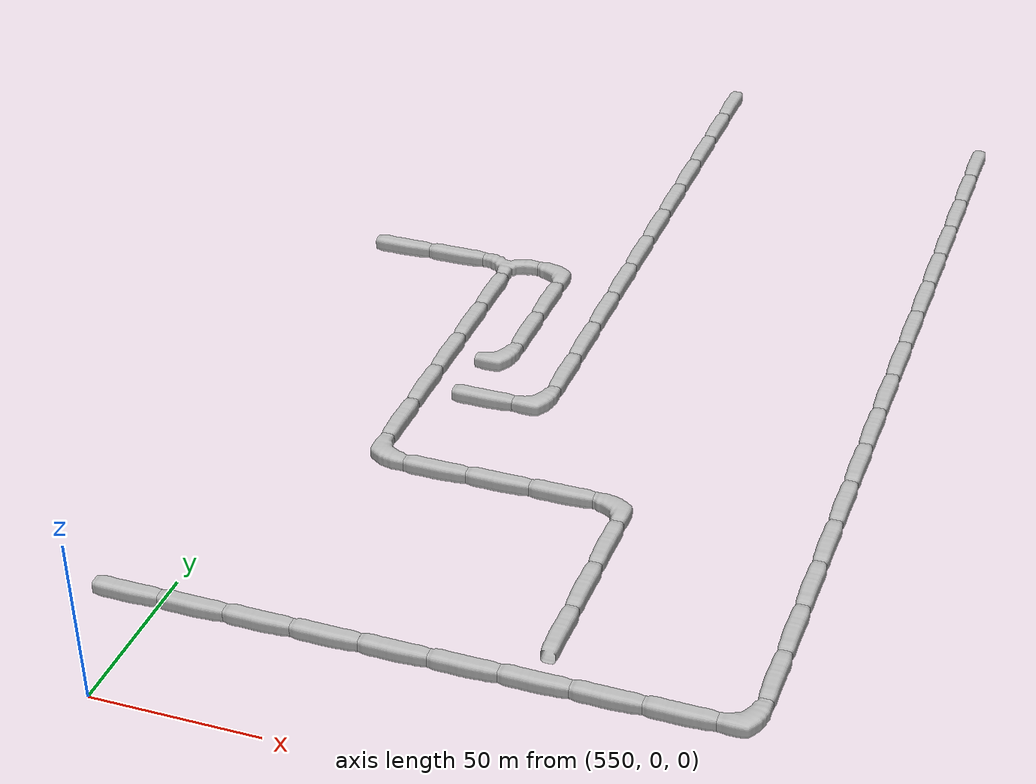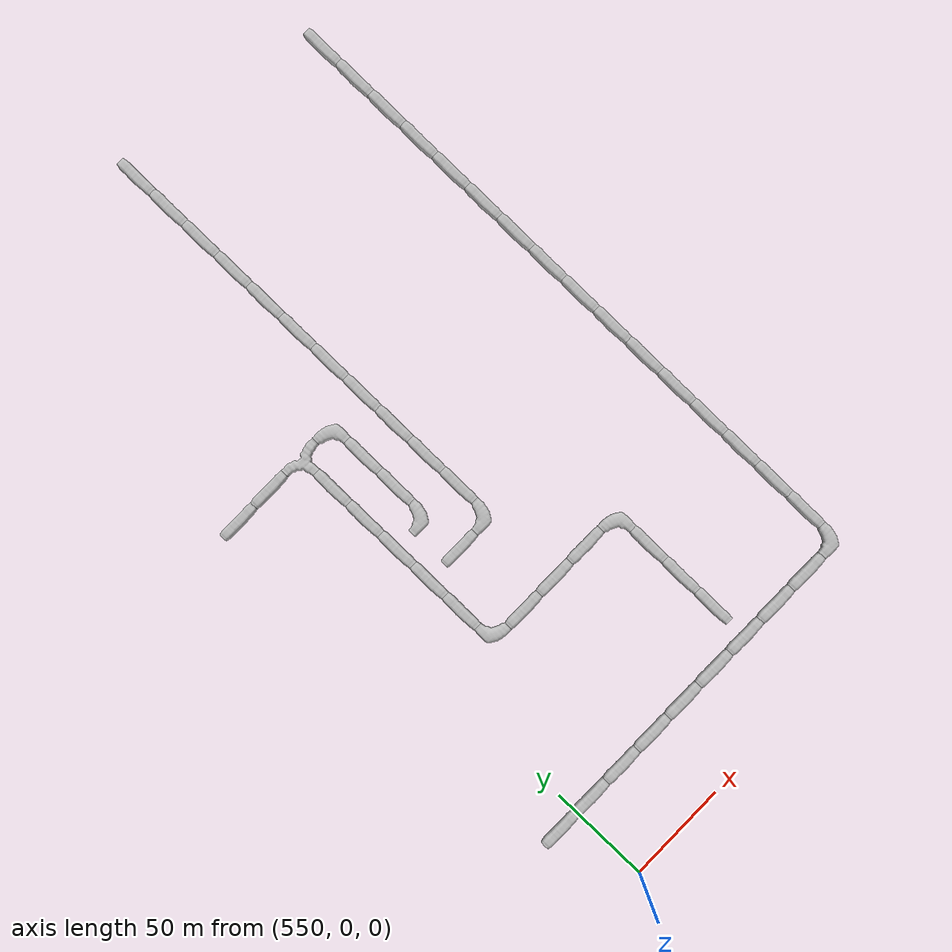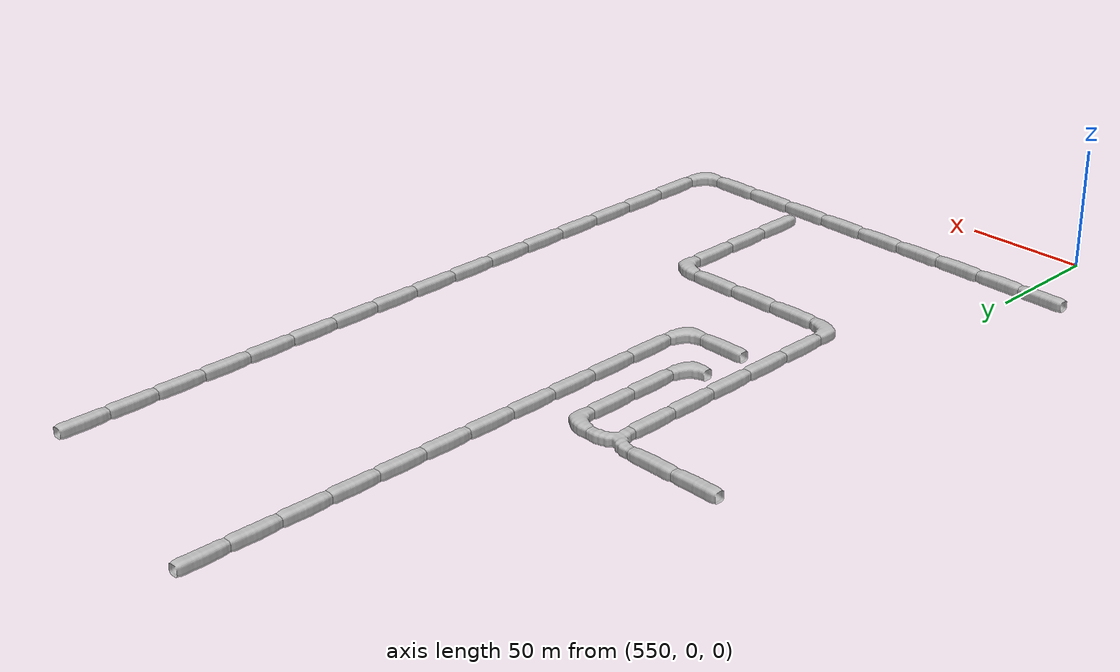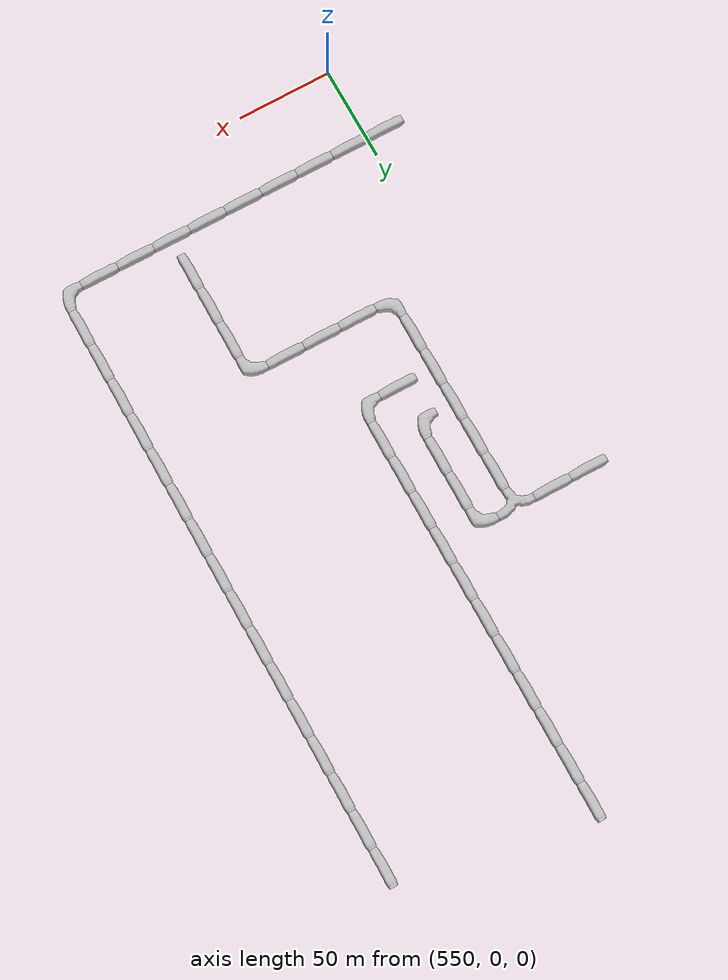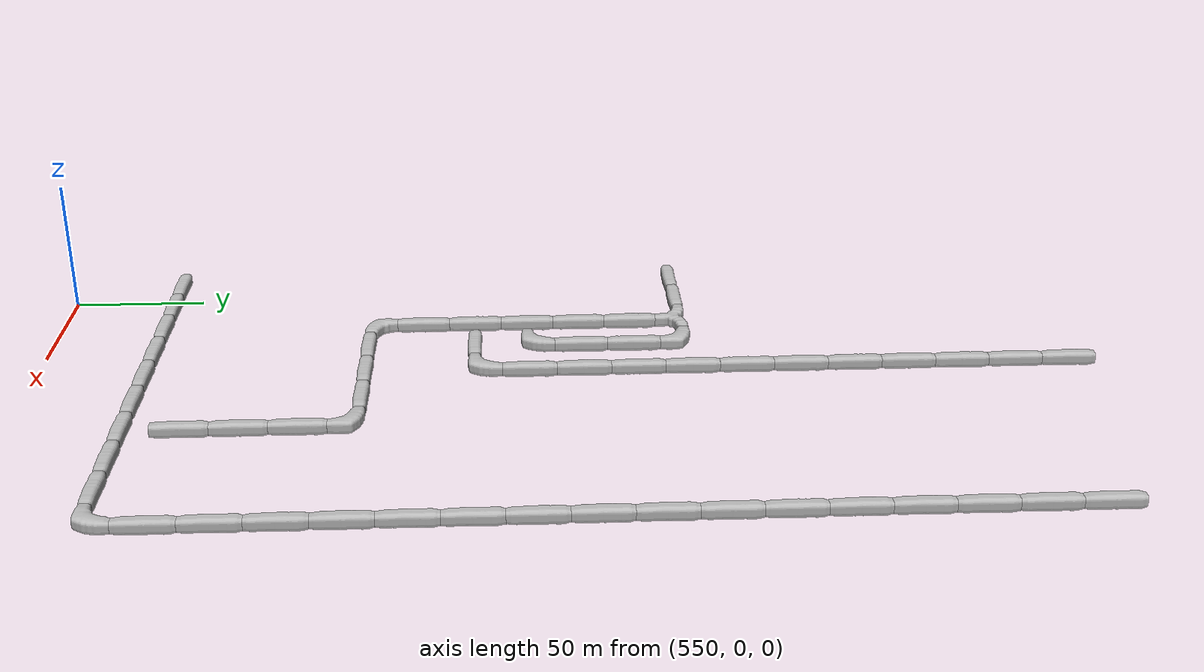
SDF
<sdf version="1.6">
 <world name="cave_32000_8">
  <include>
   <static>true</static>
   <name>cave_27_2</name>
   <pose>540 40 0 0 0 1.5707963267948966</pose>
   <uri>model://cave_straight_20m</uri>
  </include>
  <include>
   <static>true</static>
   <name>cave_28_2</name>
   <pose>560 40 0 0 0 1.5707963267948966</pose>
   <uri>model://cave_straight_20m</uri>
  </include>
  <include>
   <static>true</static>
   <name>cave_29_2</name>
   <pose>580 40 0 0 0 1.5707963267948966</pose>
   <uri>model://cave_straight_20m</uri>
  </include>
  <include>
   <static>true</static>
   <name>cave_30_2</name>
   <pose>600 40 0 0 0 1.5707963267948966</pose>
   <uri>model://cave_straight_20m</uri>
  </include>
  <include>
   <static>true</static>
   <name>cave_31_2</name>
   <pose>620 40 0 0 0 1.5707963267948966</pose>
   <uri>model://cave_straight_20m</uri>
  </include>
  <include>
   <static>true</static>
   <name>cave_32_2</name>
   <pose>640 40 0 0 0 1.5707963267948966</pose>
   <uri>model://cave_straight_20m</uri>
  </include>
  <include>
   <static>true</static>
   <name>cave_33_2</name>
   <pose>660 40 0 0 0 1.5707963267948966</pose>
   <uri>model://cave_straight_20m</uri>
  </include>
  <include>
   <static>true</static>
   <name>cave_34_2</name>
   <pose>680 40 0 0 0 1.5707963267948966</pose>
   <uri>model://cave_straight_20m</uri>
  </include>
  <include>
   <static>true</static>
   <name>cave_35_2</name>
   <pose>700 40 0 0 0 1.5707963267948966</pose>
   <uri>model://cave_straight_20m</uri>
  </include>
  <include>
   <static>true</static>
   <name>cave_36_2</name>
   <pose>720 40 0 0 0 1.5707963267948966</pose>
   <uri>model://cave_L_20m</uri>
  </include>
  <include>
   <static>true</static>
   <name>cave_36_3</name>
   <pose>720 60 0 0 0 0.0</pose>
   <uri>model://cave_straight_20m</uri>
  </include>
  <include>
   <static>true</static>
   <name>cave_36_4</name>
   <pose>720 80 0 0 0 0.0</pose>
   <uri>model://cave_straight_20m</uri>
  </include>
  <include>
   <static>true</static>
   <name>cave_36_5</name>
   <pose>720 100 0 0 0 0.0</pose>
   <uri>model://cave_straight_20m</uri>
  </include>
  <include>
   <static>true</static>
   <name>cave_36_6</name>
   <pose>720 120 0 0 0 0.0</pose>
   <uri>model://cave_straight_20m</uri>
  </include>
  <include>
   <static>true</static>
   <name>cave_36_7</name>
   <pose>720 140 0 0 0 0.0</pose>
   <uri>model://cave_straight_20m</uri>
  </include>
  <include>
   <static>true</static>
   <name>cave_36_8</name>
   <pose>720 160 0 0 0 0.0</pose>
   <uri>model://cave_straight_20m</uri>
  </include>
  <include>
   <static>true</static>
   <name>cave_36_9</name>
   <pose>720 180 0 0 0 0.0</pose>
   <uri>model://cave_straight_20m</uri>
  </include>
  <include>
   <static>true</static>
   <name>cave_36_10</name>
   <pose>720 200 0 0 0 0.0</pose>
   <uri>model://cave_straight_20m</uri>
  </include>
  <include>
   <static>true</static>
   <name>cave_36_11</name>
   <pose>720 220 0 0 0 0.0</pose>
   <uri>model://cave_straight_20m</uri>
  </include>
  <include>
   <static>true</static>
   <name>cave_36_12</name>
   <pose>720 240 0 0 0 0.0</pose>
   <uri>model://cave_straight_20m</uri>
  </include>
  <include>
   <static>true</static>
   <name>cave_36_13</name>
   <pose>720 260 0 0 0 0.0</pose>
   <uri>model://cave_straight_20m</uri>
  </include>
  <include>
   <static>true</static>
   <name>cave_36_14</name>
   <pose>720 280 0 0 0 0.0</pose>
   <uri>model://cave_straight_20m</uri>
  </include>
  <include>
   <static>true</static>
   <name>cave_36_15</name>
   <pose>720 300 0 0 0 0.0</pose>
   <uri>model://cave_straight_20m</uri>
  </include>
  <include>
   <static>true</static>
   <name>cave_36_16</name>
   <pose>720 320 0 0 0 0.0</pose>
   <uri>model://cave_straight_20m</uri>
  </include>
  <include>
   <static>true</static>
   <name>cave_36_17</name>
   <pose>720 340 0 0 0 0.0</pose>
   <uri>model://cave_straight_20m</uri>
  </include>
  <include>
   <static>true</static>
   <name>cave_36_18</name>
   <pose>720 360 0 0 0 0.0</pose>
   <uri>model://cave_straight_20m</uri>
  </include>
  <include>
   <static>true</static>
   <name>cave_31_19</name>
   <pose>620 380 0 0 0 0.0</pose>
   <uri>model://cave_straight_20m</uri>
  </include>
  <include>
   <static>true</static>
   <name>cave_31_18</name>
   <pose>620 360 0 0 0 0.0</pose>
   <uri>model://cave_straight_20m</uri>
  </include>
  <include>
   <static>true</static>
   <name>cave_31_17</name>
   <pose>620 340 0 0 0 0.0</pose>
   <uri>model://cave_straight_20m</uri>
  </include>
  <include>
   <static>true</static>
   <name>cave_31_16</name>
   <pose>620 320 0 0 0 0.0</pose>
   <uri>model://cave_straight_20m</uri>
  </include>
  <include>
   <static>true</static>
   <name>cave_31_15</name>
   <pose>620 300 0 0 0 0.0</pose>
   <uri>model://cave_straight_20m</uri>
  </include>
  <include>
   <static>true</static>
   <name>cave_31_14</name>
   <pose>620 280 0 0 0 0.0</pose>
   <uri>model://cave_straight_20m</uri>
  </include>
  <include>
   <static>true</static>
   <name>cave_31_13</name>
   <pose>620 260 0 0 0 0.0</pose>
   <uri>model://cave_straight_20m</uri>
  </include>
  <include>
   <static>true</static>
   <name>cave_31_12</name>
   <pose>620 240 0 0 0 0.0</pose>
   <uri>model://cave_straight_20m</uri>
  </include>
  <include>
   <static>true</static>
   <name>cave_31_11</name>
   <pose>620 220 0 0 0 0.0</pose>
   <uri>model://cave_straight_20m</uri>
  </include>
  <include>
   <static>true</static>
   <name>cave_31_10</name>
   <pose>620 200 0 0 0 0.0</pose>
   <uri>model://cave_straight_20m</uri>
  </include>
  <include>
   <static>true</static>
   <name>cave_31_9</name>
   <pose>620 180 0 0 0 0.0</pose>
   <uri>model://cave_straight_20m</uri>
  </include>
  <include>
   <static>true</static>
   <name>cave_31_8</name>
   <pose>620 160 0 0 0 1.5707963267948966</pose>
   <uri>model://cave_L_20m</uri>
  </include>
  <include>
   <static>true</static>
   <name>cave_30_8</name>
   <pose>600 160 0 0 0 1.5707963267948966</pose>
   <uri>model://cave_straight_20m</uri>
  </include>
  <include>
   <static>true</static>
   <name>cave_27_12</name>
   <pose>540 240 0 0 0 1.5707963267948966</pose>
   <uri>model://cave_straight_20m</uri>
  </include>
  <include>
   <static>true</static>
   <name>cave_28_12</name>
   <pose>560 240 0 0 0 1.5707963267948966</pose>
   <uri>model://cave_straight_20m</uri>
  </include>
  <include>
   <static>true</static>
   <name>cave_29_12</name>
   <pose>580 240 0 0 0 3.141592653589793</pose>
   <uri>model://cave_3way_20m</uri>
  </include>
  <include>
   <static>true</static>
   <name>cave_30_12</name>
   <pose>600 240 0 0 0 3.141592653589793</pose>
   <uri>model://cave_L_20m</uri>
  </include>
  <include>
   <static>true</static>
   <name>cave_30_11</name>
   <pose>600 220 0 0 0 0.0</pose>
   <uri>model://cave_straight_20m</uri>
  </include>
  <include>
   <static>true</static>
   <name>cave_30_10</name>
   <pose>600 200 0 0 0 0.0</pose>
   <uri>model://cave_straight_20m</uri>
  </include>
  <include>
   <static>true</static>
   <name>cave_30_9</name>
   <pose>600 180 0 0 0 1.5707963267948966</pose>
   <uri>model://cave_L_20m</uri>
  </include>
  <include>
   <static>true</static>
   <name>cave_29_11</name>
   <pose>580 220 0 0 0 0.0</pose>
   <uri>model://cave_straight_20m</uri>
  </include>
  <include>
   <static>true</static>
   <name>cave_29_10</name>
   <pose>580 200 0 0 0 0.0</pose>
   <uri>model://cave_straight_20m</uri>
  </include>
  <include>
   <static>true</static>
   <name>cave_29_9</name>
   <pose>580 180 0 0 0 0.0</pose>
   <uri>model://cave_straight_20m</uri>
  </include>
  <include>
   <static>true</static>
   <name>cave_29_8</name>
   <pose>580 160 0 0 0 0.0</pose>
   <uri>model://cave_straight_20m</uri>
  </include>
  <include>
   <static>true</static>
   <name>cave_29_7</name>
   <pose>580 140 0 0 0 0.0</pose>
   <uri>model://cave_straight_20m</uri>
  </include>
  <include>
   <static>true</static>
   <name>cave_29_6</name>
   <pose>580 120 0 0 0 0.0</pose>
   <uri>model://cave_L_20m</uri>
  </include>
  <include>
   <static>true</static>
   <name>cave_30_6</name>
   <pose>600 120 0 0 0 1.5707963267948966</pose>
   <uri>model://cave_straight_20m</uri>
  </include>
  <include>
   <static>true</static>
   <name>cave_31_6</name>
   <pose>620 120 0 0 0 1.5707963267948966</pose>
   <uri>model://cave_straight_20m</uri>
  </include>
  <include>
   <static>true</static>
   <name>cave_32_6</name>
   <pose>640 120 0 0 0 1.5707963267948966</pose>
   <uri>model://cave_straight_20m</uri>
  </include>
  <include>
   <static>true</static>
   <name>cave_33_6</name>
   <pose>660 120 0 0 0 3.141592653589793</pose>
   <uri>model://cave_L_20m</uri>
  </include>
  <include>
   <static>true</static>
   <name>cave_33_5</name>
   <pose>660 100 0 0 0 0.0</pose>
   <uri>model://cave_straight_20m</uri>
  </include>
  <include>
   <static>true</static>
   <name>cave_33_4</name>
   <pose>660 80 0 0 0 0.0</pose>
   <uri>model://cave_straight_20m</uri>
  </include>
  <include>
   <static>true</static>
   <name>cave_33_3</name>
   <pose>660 60 0 0 0 0.0</pose>
   <uri>model://cave_straight_20m</uri>
  </include>
 </world>
</sdf>
